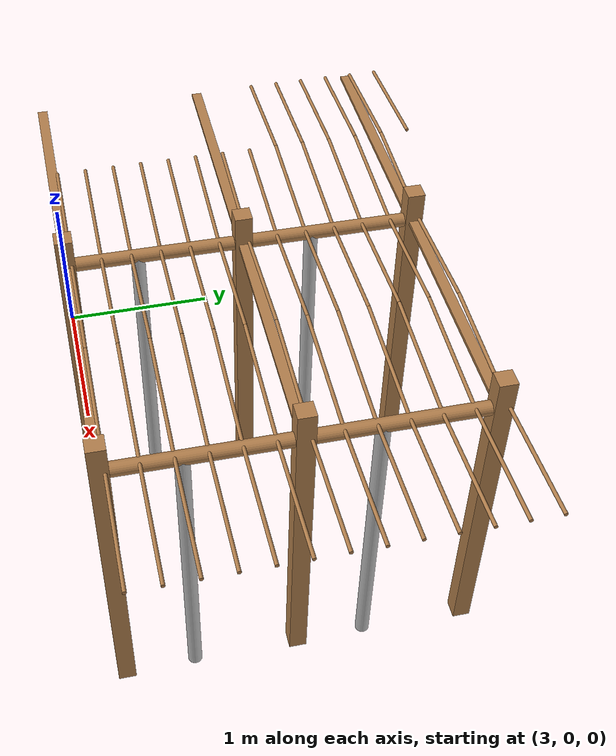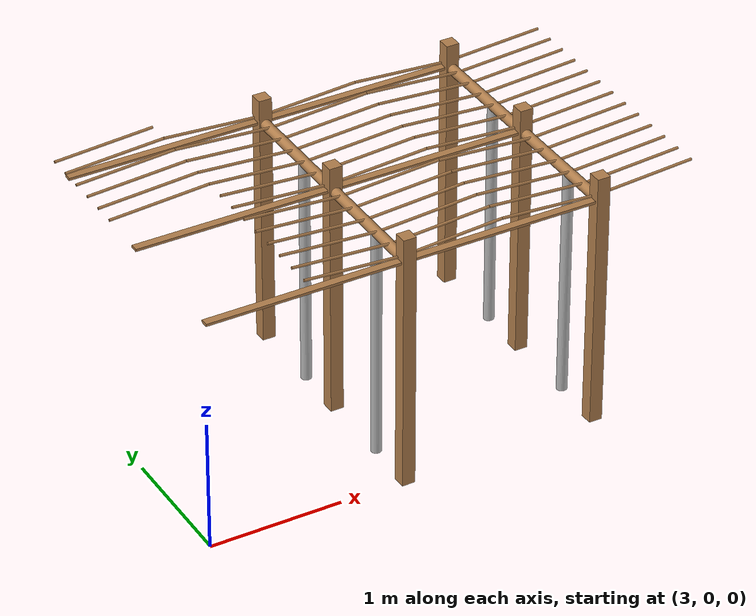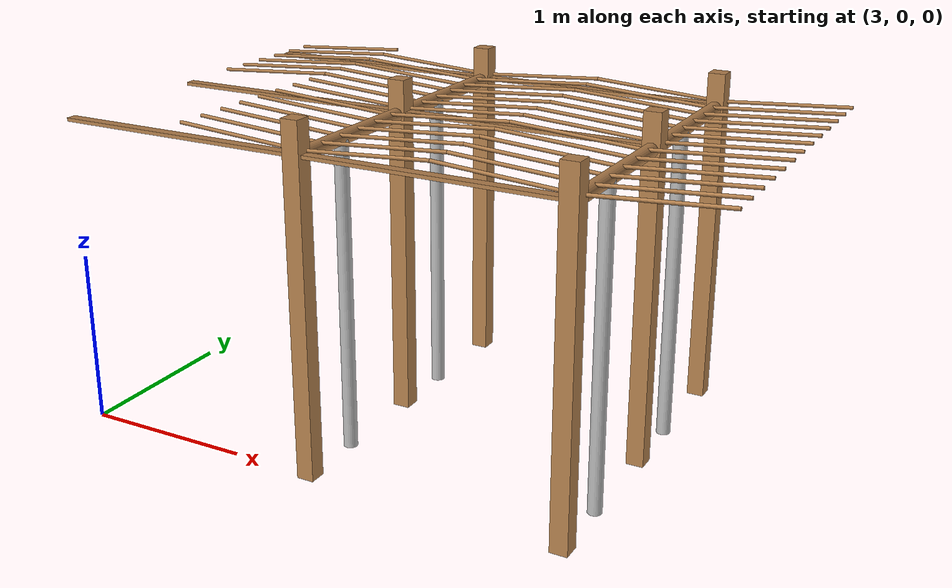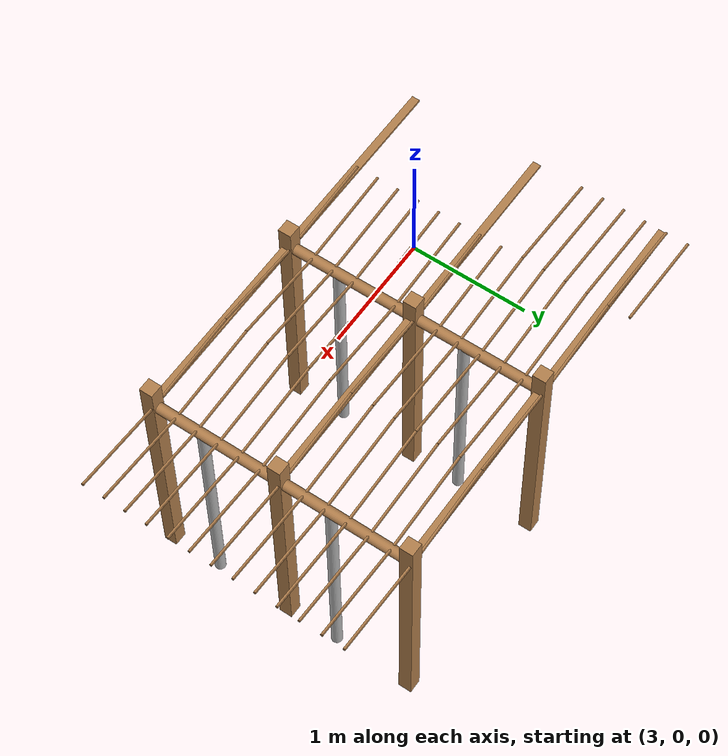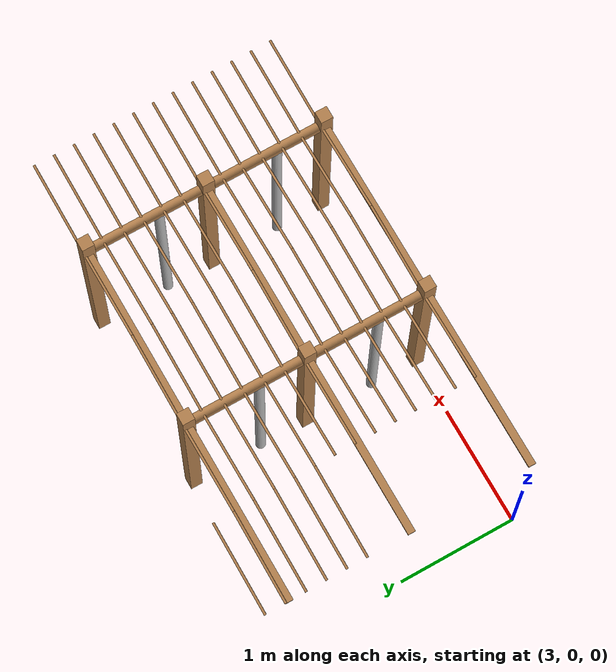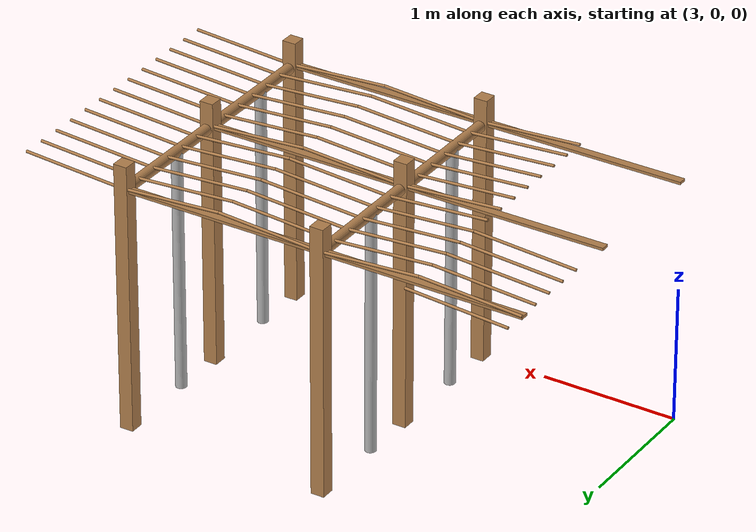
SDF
<sdf version="1.4">
 <model name="pergola">
  <include><name>post_33</name><pose>4.5 0.0 0 0 0 0</pose><uri>model://post</uri></include>
  <include><name>post_34</name><pose>4.5 1.0 0 0 0 0</pose><uri>model://post</uri></include>
  <include><name>post_35</name><pose>4.5 2.0 0 0 0 0</pose><uri>model://post</uri></include>
  <include><name>post_44</name><pose>6.0 0.0 0 0 0 0</pose><uri>model://post</uri></include>
  <include><name>post_45</name><pose>6.0 1.0 0 0 0 0</pose><uri>model://post</uri></include>
  <include><name>post_46</name><pose>6.0 2.0 0 0 0 0</pose><uri>model://post</uri></include>
  <link name="beam_22">
   <pose>3.75 0.0 1.81 0 0 0</pose>
   <collision name="collision"><geometry><box><size>1.5 0.06 0.02</size></box></geometry></collision>
   <visual name="visual">
    <geometry><box><size>1.5 0.06 0.02</size></box></geometry>
    <material><script><name>Gazebo/Wood</name></script></material>
   </visual>
   <inertial>
    <mass>5</mass>
    <inertia>
     <ixx>0.0016666666666666668</ixx>
     <ixy>0.0</ixy>
     <ixz>0.0</ixz>
     <iyy>0.9390000000000001</iyy>
     <iyz>0.0</iyz>
     <izz>0.9376666666666665</izz>
    </inertia>
   </inertial>
  </link>
  <link name="beam_23">
   <pose>3.75 1.0 1.81 0 0 0</pose>
   <collision name="collision"><geometry><box><size>1.5 0.06 0.02</size></box></geometry></collision>
   <visual name="visual">
    <geometry><box><size>1.5 0.06 0.02</size></box></geometry>
    <material><script><name>Gazebo/Wood</name></script></material>
   </visual>
   <inertial>
    <mass>5</mass>
    <inertia>
     <ixx>0.0016666666666666668</ixx>
     <ixy>0.0</ixy>
     <ixz>0.0</ixz>
     <iyy>0.9390000000000001</iyy>
     <iyz>0.0</iyz>
     <izz>0.9376666666666665</izz>
    </inertia>
   </inertial>
  </link>
  <link name="beam_24">
   <pose>3.75 2.0 1.81 0 0 0</pose>
   <collision name="collision"><geometry><box><size>1.5 0.06 0.02</size></box></geometry></collision>
   <visual name="visual">
    <geometry><box><size>1.5 0.06 0.02</size></box></geometry>
    <material><script><name>Gazebo/Wood</name></script></material>
   </visual>
   <inertial>
    <mass>5</mass>
    <inertia>
     <ixx>0.0016666666666666668</ixx>
     <ixy>0.0</ixy>
     <ixz>0.0</ixz>
     <iyy>0.9390000000000001</iyy>
     <iyz>0.0</iyz>
     <izz>0.9376666666666665</izz>
    </inertia>
   </inertial>
  </link>
  <link name="beam_33">
   <pose>5.25 0.0 1.81 0 0 0</pose>
   <collision name="collision"><geometry><box><size>1.5 0.06 0.02</size></box></geometry></collision>
   <visual name="visual">
    <geometry><box><size>1.5 0.06 0.02</size></box></geometry>
    <material><script><name>Gazebo/Wood</name></script></material>
   </visual>
   <inertial>
    <mass>5</mass>
    <inertia>
     <ixx>0.0016666666666666668</ixx>
     <ixy>0.0</ixy>
     <ixz>0.0</ixz>
     <iyy>0.9390000000000001</iyy>
     <iyz>0.0</iyz>
     <izz>0.9376666666666665</izz>
    </inertia>
   </inertial>
  </link>
  <link name="beam_34">
   <pose>5.25 1.0 1.81 0 0 0</pose>
   <collision name="collision"><geometry><box><size>1.5 0.06 0.02</size></box></geometry></collision>
   <visual name="visual">
    <geometry><box><size>1.5 0.06 0.02</size></box></geometry>
    <material><script><name>Gazebo/Wood</name></script></material>
   </visual>
   <inertial>
    <mass>5</mass>
    <inertia>
     <ixx>0.0016666666666666668</ixx>
     <ixy>0.0</ixy>
     <ixz>0.0</ixz>
     <iyy>0.9390000000000001</iyy>
     <iyz>0.0</iyz>
     <izz>0.9376666666666665</izz>
    </inertia>
   </inertial>
  </link>
  <link name="beam_35">
   <pose>5.25 2.0 1.81 0 0 0</pose>
   <collision name="collision"><geometry><box><size>1.5 0.06 0.02</size></box></geometry></collision>
   <visual name="visual">
    <geometry><box><size>1.5 0.06 0.02</size></box></geometry>
    <material><script><name>Gazebo/Wood</name></script></material>
   </visual>
   <inertial>
    <mass>5</mass>
    <inertia>
     <ixx>0.0016666666666666668</ixx>
     <ixy>0.0</ixy>
     <ixz>0.0</ixz>
     <iyy>0.9390000000000001</iyy>
     <iyz>0.0</iyz>
     <izz>0.9376666666666665</izz>
    </inertia>
   </inertial>
  </link>
  <include><name>tree_30</name><pose>4.5 0.4 0 0 0 0</pose><uri>model://tree_trunk</uri></include>
  <include><name>tree_31</name><pose>4.5 1.4 0 0 0 0</pose><uri>model://tree_trunk</uri></include>
  <include><name>tree_40</name><pose>6.0 0.4 0 0 0 0</pose><uri>model://tree_trunk</uri></include>
  <include><name>tree_41</name><pose>6.0 1.4 0 0 0 0</pose><uri>model://tree_trunk</uri></include>
  <link name="baseBranch_30">
   <pose>4.5 0.5 1.8 1.5707963267948966 0 0</pose>
   <collision name="collision">
    <geometry><cylinder><radius>0.04</radius><length>0.94</length></cylinder></geometry>
   </collision>
   <visual name="visual">
    <geometry><cylinder><radius>0.04</radius><length>0.94</length></cylinder></geometry>
    <material><script><name>Gazebo/WoodFloor</name></script></material>
   </visual>
   <inertial>
    <mass>10</mass>
    <inertia>
     <ixx>0.7403333333333334</ixx>
     <ixy>0.0</ixy>
     <ixz>0.0</ixz>
     <iyy>0.7403333333333334</iyy>
     <iyz>0.0</iyz>
     <izz>0.008</izz>
    </inertia>
   </inertial>
  </link>
  <link name="baseBranch_31">
   <pose>4.5 1.5 1.8 1.5707963267948966 0 0</pose>
   <collision name="collision">
    <geometry><cylinder><radius>0.04</radius><length>0.94</length></cylinder></geometry>
   </collision>
   <visual name="visual">
    <geometry><cylinder><radius>0.04</radius><length>0.94</length></cylinder></geometry>
    <material><script><name>Gazebo/WoodFloor</name></script></material>
   </visual>
   <inertial>
    <mass>10</mass>
    <inertia>
     <ixx>0.7403333333333334</ixx>
     <ixy>0.0</ixy>
     <ixz>0.0</ixz>
     <iyy>0.7403333333333334</iyy>
     <iyz>0.0</iyz>
     <izz>0.008</izz>
    </inertia>
   </inertial>
  </link>
  <link name="baseBranch_40">
   <pose>6.0 0.5 1.8 1.5707963267948966 0 0</pose>
   <collision name="collision">
    <geometry><cylinder><radius>0.04</radius><length>0.94</length></cylinder></geometry>
   </collision>
   <visual name="visual">
    <geometry><cylinder><radius>0.04</radius><length>0.94</length></cylinder></geometry>
    <material><script><name>Gazebo/WoodFloor</name></script></material>
   </visual>
   <inertial>
    <mass>10</mass>
    <inertia>
     <ixx>0.7403333333333334</ixx>
     <ixy>0.0</ixy>
     <ixz>0.0</ixz>
     <iyy>0.7403333333333334</iyy>
     <iyz>0.0</iyz>
     <izz>0.008</izz>
    </inertia>
   </inertial>
  </link>
  <link name="baseBranch_41">
   <pose>6.0 1.5 1.8 1.5707963267948966 0 0</pose>
   <collision name="collision">
    <geometry><cylinder><radius>0.04</radius><length>0.94</length></cylinder></geometry>
   </collision>
   <visual name="visual">
    <geometry><cylinder><radius>0.04</radius><length>0.94</length></cylinder></geometry>
    <material><script><name>Gazebo/WoodFloor</name></script></material>
   </visual>
   <inertial>
    <mass>10</mass>
    <inertia>
     <ixx>0.7403333333333334</ixx>
     <ixy>0.0</ixy>
     <ixz>0.0</ixz>
     <iyy>0.7403333333333334</iyy>
     <iyz>0.0</iyz>
     <izz>0.008</izz>
    </inertia>
   </inertial>
  </link>
  <link name="vine_241">
   <pose>4.125 0.03 1.85 0 -1.5042281630190728 0</pose>
   <collision name="collision">
    <geometry><cylinder><radius>0.01</radius><length>0.7516648189186453</length></cylinder></geometry>
   </collision>
   <visual name="visual">
    <geometry><cylinder><radius>0.01</radius><length>0.7516648189186453</length></cylinder></geometry>
    <material><script><name>Gazebo/WoodFloor</name></script></material>
   </visual>
   <inertial>
    <mass>5</mass>
    <inertia>
     <ixx>0.23554166666666657</ixx>
     <ixy>0.0</ixy>
     <ixz>0.0</ixz>
     <iyy>0.23554166666666657</iyy>
     <iyz>0.0</iyz>
     <izz>0.00025</izz>
    </inertia>
   </inertial>
  </link>
  <link name="vine_243">
   <pose>4.125 0.19666666666666666 1.85 0 -1.5042281630190728 0</pose>
   <collision name="collision">
    <geometry><cylinder><radius>0.01</radius><length>0.7516648189186453</length></cylinder></geometry>
   </collision>
   <visual name="visual">
    <geometry><cylinder><radius>0.01</radius><length>0.7516648189186453</length></cylinder></geometry>
    <material><script><name>Gazebo/WoodFloor</name></script></material>
   </visual>
   <inertial>
    <mass>5</mass>
    <inertia>
     <ixx>0.23554166666666657</ixx>
     <ixy>0.0</ixy>
     <ixz>0.0</ixz>
     <iyy>0.23554166666666657</iyy>
     <iyz>0.0</iyz>
     <izz>0.00025</izz>
    </inertia>
   </inertial>
  </link>
  <link name="vine_245">
   <pose>4.125 0.3633333333333333 1.85 0 -1.5042281630190728 0</pose>
   <collision name="collision">
    <geometry><cylinder><radius>0.01</radius><length>0.7516648189186453</length></cylinder></geometry>
   </collision>
   <visual name="visual">
    <geometry><cylinder><radius>0.01</radius><length>0.7516648189186453</length></cylinder></geometry>
    <material><script><name>Gazebo/WoodFloor</name></script></material>
   </visual>
   <inertial>
    <mass>5</mass>
    <inertia>
     <ixx>0.23554166666666657</ixx>
     <ixy>0.0</ixy>
     <ixz>0.0</ixz>
     <iyy>0.23554166666666657</iyy>
     <iyz>0.0</iyz>
     <izz>0.00025</izz>
    </inertia>
   </inertial>
  </link>
  <link name="vine_247">
   <pose>4.125 0.53 1.85 0 -1.5042281630190728 0</pose>
   <collision name="collision">
    <geometry><cylinder><radius>0.01</radius><length>0.7516648189186453</length></cylinder></geometry>
   </collision>
   <visual name="visual">
    <geometry><cylinder><radius>0.01</radius><length>0.7516648189186453</length></cylinder></geometry>
    <material><script><name>Gazebo/WoodFloor</name></script></material>
   </visual>
   <inertial>
    <mass>5</mass>
    <inertia>
     <ixx>0.23554166666666657</ixx>
     <ixy>0.0</ixy>
     <ixz>0.0</ixz>
     <iyy>0.23554166666666657</iyy>
     <iyz>0.0</iyz>
     <izz>0.00025</izz>
    </inertia>
   </inertial>
  </link>
  <link name="vine_249">
   <pose>4.125 0.6966666666666667 1.85 0 -1.5042281630190728 0</pose>
   <collision name="collision">
    <geometry><cylinder><radius>0.01</radius><length>0.7516648189186453</length></cylinder></geometry>
   </collision>
   <visual name="visual">
    <geometry><cylinder><radius>0.01</radius><length>0.7516648189186453</length></cylinder></geometry>
    <material><script><name>Gazebo/WoodFloor</name></script></material>
   </visual>
   <inertial>
    <mass>5</mass>
    <inertia>
     <ixx>0.23554166666666657</ixx>
     <ixy>0.0</ixy>
     <ixz>0.0</ixz>
     <iyy>0.23554166666666657</iyy>
     <iyz>0.0</iyz>
     <izz>0.00025</izz>
    </inertia>
   </inertial>
  </link>
  <link name="vine_251">
   <pose>4.125 0.8633333333333333 1.85 0 -1.5042281630190728 0</pose>
   <collision name="collision">
    <geometry><cylinder><radius>0.01</radius><length>0.7516648189186453</length></cylinder></geometry>
   </collision>
   <visual name="visual">
    <geometry><cylinder><radius>0.01</radius><length>0.7516648189186453</length></cylinder></geometry>
    <material><script><name>Gazebo/WoodFloor</name></script></material>
   </visual>
   <inertial>
    <mass>5</mass>
    <inertia>
     <ixx>0.23554166666666657</ixx>
     <ixy>0.0</ixy>
     <ixz>0.0</ixz>
     <iyy>0.23554166666666657</iyy>
     <iyz>0.0</iyz>
     <izz>0.00025</izz>
    </inertia>
   </inertial>
  </link>
  <link name="vine_253">
   <pose>4.125 1.03 1.85 0 -1.5042281630190728 0</pose>
   <collision name="collision">
    <geometry><cylinder><radius>0.01</radius><length>0.7516648189186453</length></cylinder></geometry>
   </collision>
   <visual name="visual">
    <geometry><cylinder><radius>0.01</radius><length>0.7516648189186453</length></cylinder></geometry>
    <material><script><name>Gazebo/WoodFloor</name></script></material>
   </visual>
   <inertial>
    <mass>5</mass>
    <inertia>
     <ixx>0.23554166666666657</ixx>
     <ixy>0.0</ixy>
     <ixz>0.0</ixz>
     <iyy>0.23554166666666657</iyy>
     <iyz>0.0</iyz>
     <izz>0.00025</izz>
    </inertia>
   </inertial>
  </link>
  <link name="vine_255">
   <pose>4.125 1.1966666666666665 1.85 0 -1.5042281630190728 0</pose>
   <collision name="collision">
    <geometry><cylinder><radius>0.01</radius><length>0.7516648189186453</length></cylinder></geometry>
   </collision>
   <visual name="visual">
    <geometry><cylinder><radius>0.01</radius><length>0.7516648189186453</length></cylinder></geometry>
    <material><script><name>Gazebo/WoodFloor</name></script></material>
   </visual>
   <inertial>
    <mass>5</mass>
    <inertia>
     <ixx>0.23554166666666657</ixx>
     <ixy>0.0</ixy>
     <ixz>0.0</ixz>
     <iyy>0.23554166666666657</iyy>
     <iyz>0.0</iyz>
     <izz>0.00025</izz>
    </inertia>
   </inertial>
  </link>
  <link name="vine_256">
   <pose>3.375 1.3633333333333333 1.85 0 1.5042281630190728 0</pose>
   <collision name="collision">
    <geometry><cylinder><radius>0.01</radius><length>0.7516648189186453</length></cylinder></geometry>
   </collision>
   <visual name="visual">
    <geometry><cylinder><radius>0.01</radius><length>0.7516648189186453</length></cylinder></geometry>
    <material><script><name>Gazebo/WoodFloor</name></script></material>
   </visual>
   <inertial>
    <mass>5</mass>
    <inertia>
     <ixx>0.23554166666666657</ixx>
     <ixy>0.0</ixy>
     <ixz>0.0</ixz>
     <iyy>0.23554166666666657</iyy>
     <iyz>0.0</iyz>
     <izz>0.00025</izz>
    </inertia>
   </inertial>
  </link>
  <link name="vine_257">
   <pose>4.125 1.3633333333333333 1.85 0 -1.5042281630190728 0</pose>
   <collision name="collision">
    <geometry><cylinder><radius>0.01</radius><length>0.7516648189186453</length></cylinder></geometry>
   </collision>
   <visual name="visual">
    <geometry><cylinder><radius>0.01</radius><length>0.7516648189186453</length></cylinder></geometry>
    <material><script><name>Gazebo/WoodFloor</name></script></material>
   </visual>
   <inertial>
    <mass>5</mass>
    <inertia>
     <ixx>0.23554166666666657</ixx>
     <ixy>0.0</ixy>
     <ixz>0.0</ixz>
     <iyy>0.23554166666666657</iyy>
     <iyz>0.0</iyz>
     <izz>0.00025</izz>
    </inertia>
   </inertial>
  </link>
  <link name="vine_258">
   <pose>3.375 1.53 1.85 0 1.5042281630190728 0</pose>
   <collision name="collision">
    <geometry><cylinder><radius>0.01</radius><length>0.7516648189186453</length></cylinder></geometry>
   </collision>
   <visual name="visual">
    <geometry><cylinder><radius>0.01</radius><length>0.7516648189186453</length></cylinder></geometry>
    <material><script><name>Gazebo/WoodFloor</name></script></material>
   </visual>
   <inertial>
    <mass>5</mass>
    <inertia>
     <ixx>0.23554166666666657</ixx>
     <ixy>0.0</ixy>
     <ixz>0.0</ixz>
     <iyy>0.23554166666666657</iyy>
     <iyz>0.0</iyz>
     <izz>0.00025</izz>
    </inertia>
   </inertial>
  </link>
  <link name="vine_259">
   <pose>4.125 1.53 1.85 0 -1.5042281630190728 0</pose>
   <collision name="collision">
    <geometry><cylinder><radius>0.01</radius><length>0.7516648189186453</length></cylinder></geometry>
   </collision>
   <visual name="visual">
    <geometry><cylinder><radius>0.01</radius><length>0.7516648189186453</length></cylinder></geometry>
    <material><script><name>Gazebo/WoodFloor</name></script></material>
   </visual>
   <inertial>
    <mass>5</mass>
    <inertia>
     <ixx>0.23554166666666657</ixx>
     <ixy>0.0</ixy>
     <ixz>0.0</ixz>
     <iyy>0.23554166666666657</iyy>
     <iyz>0.0</iyz>
     <izz>0.00025</izz>
    </inertia>
   </inertial>
  </link>
  <link name="vine_260">
   <pose>3.375 1.6966666666666665 1.85 0 1.5042281630190728 0</pose>
   <collision name="collision">
    <geometry><cylinder><radius>0.01</radius><length>0.7516648189186453</length></cylinder></geometry>
   </collision>
   <visual name="visual">
    <geometry><cylinder><radius>0.01</radius><length>0.7516648189186453</length></cylinder></geometry>
    <material><script><name>Gazebo/WoodFloor</name></script></material>
   </visual>
   <inertial>
    <mass>5</mass>
    <inertia>
     <ixx>0.23554166666666657</ixx>
     <ixy>0.0</ixy>
     <ixz>0.0</ixz>
     <iyy>0.23554166666666657</iyy>
     <iyz>0.0</iyz>
     <izz>0.00025</izz>
    </inertia>
   </inertial>
  </link>
  <link name="vine_261">
   <pose>4.125 1.6966666666666665 1.85 0 -1.5042281630190728 0</pose>
   <collision name="collision">
    <geometry><cylinder><radius>0.01</radius><length>0.7516648189186453</length></cylinder></geometry>
   </collision>
   <visual name="visual">
    <geometry><cylinder><radius>0.01</radius><length>0.7516648189186453</length></cylinder></geometry>
    <material><script><name>Gazebo/WoodFloor</name></script></material>
   </visual>
   <inertial>
    <mass>5</mass>
    <inertia>
     <ixx>0.23554166666666657</ixx>
     <ixy>0.0</ixy>
     <ixz>0.0</ixz>
     <iyy>0.23554166666666657</iyy>
     <iyz>0.0</iyz>
     <izz>0.00025</izz>
    </inertia>
   </inertial>
  </link>
  <link name="vine_262">
   <pose>3.375 1.8633333333333333 1.85 0 1.5042281630190728 0</pose>
   <collision name="collision">
    <geometry><cylinder><radius>0.01</radius><length>0.7516648189186453</length></cylinder></geometry>
   </collision>
   <visual name="visual">
    <geometry><cylinder><radius>0.01</radius><length>0.7516648189186453</length></cylinder></geometry>
    <material><script><name>Gazebo/WoodFloor</name></script></material>
   </visual>
   <inertial>
    <mass>5</mass>
    <inertia>
     <ixx>0.23554166666666657</ixx>
     <ixy>0.0</ixy>
     <ixz>0.0</ixz>
     <iyy>0.23554166666666657</iyy>
     <iyz>0.0</iyz>
     <izz>0.00025</izz>
    </inertia>
   </inertial>
  </link>
  <link name="vine_263">
   <pose>4.125 1.8633333333333333 1.85 0 -1.5042281630190728 0</pose>
   <collision name="collision">
    <geometry><cylinder><radius>0.01</radius><length>0.7516648189186453</length></cylinder></geometry>
   </collision>
   <visual name="visual">
    <geometry><cylinder><radius>0.01</radius><length>0.7516648189186453</length></cylinder></geometry>
    <material><script><name>Gazebo/WoodFloor</name></script></material>
   </visual>
   <inertial>
    <mass>5</mass>
    <inertia>
     <ixx>0.23554166666666657</ixx>
     <ixy>0.0</ixy>
     <ixz>0.0</ixz>
     <iyy>0.23554166666666657</iyy>
     <iyz>0.0</iyz>
     <izz>0.00025</izz>
    </inertia>
   </inertial>
  </link>
  <link name="vine_264">
   <pose>3.375 2.03 1.85 0 1.5042281630190728 0</pose>
   <collision name="collision">
    <geometry><cylinder><radius>0.01</radius><length>0.7516648189186453</length></cylinder></geometry>
   </collision>
   <visual name="visual">
    <geometry><cylinder><radius>0.01</radius><length>0.7516648189186453</length></cylinder></geometry>
    <material><script><name>Gazebo/WoodFloor</name></script></material>
   </visual>
   <inertial>
    <mass>5</mass>
    <inertia>
     <ixx>0.23554166666666657</ixx>
     <ixy>0.0</ixy>
     <ixz>0.0</ixz>
     <iyy>0.23554166666666657</iyy>
     <iyz>0.0</iyz>
     <izz>0.00025</izz>
    </inertia>
   </inertial>
  </link>
  <link name="vine_265">
   <pose>4.125 2.03 1.85 0 -1.5042281630190728 0</pose>
   <collision name="collision">
    <geometry><cylinder><radius>0.01</radius><length>0.7516648189186453</length></cylinder></geometry>
   </collision>
   <visual name="visual">
    <geometry><cylinder><radius>0.01</radius><length>0.7516648189186453</length></cylinder></geometry>
    <material><script><name>Gazebo/WoodFloor</name></script></material>
   </visual>
   <inertial>
    <mass>5</mass>
    <inertia>
     <ixx>0.23554166666666657</ixx>
     <ixy>0.0</ixy>
     <ixz>0.0</ixz>
     <iyy>0.23554166666666657</iyy>
     <iyz>0.0</iyz>
     <izz>0.00025</izz>
    </inertia>
   </inertial>
  </link>
  <link name="vine_266">
   <pose>3.375 2.1966666666666663 1.85 0 1.5042281630190728 0</pose>
   <collision name="collision">
    <geometry><cylinder><radius>0.01</radius><length>0.7516648189186453</length></cylinder></geometry>
   </collision>
   <visual name="visual">
    <geometry><cylinder><radius>0.01</radius><length>0.7516648189186453</length></cylinder></geometry>
    <material><script><name>Gazebo/WoodFloor</name></script></material>
   </visual>
   <inertial>
    <mass>5</mass>
    <inertia>
     <ixx>0.23554166666666657</ixx>
     <ixy>0.0</ixy>
     <ixz>0.0</ixz>
     <iyy>0.23554166666666657</iyy>
     <iyz>0.0</iyz>
     <izz>0.00025</izz>
    </inertia>
   </inertial>
  </link>
  <link name="vine_360">
   <pose>4.875 0.03 1.85 0 1.5042281630190728 0</pose>
   <collision name="collision">
    <geometry><cylinder><radius>0.01</radius><length>0.7516648189186453</length></cylinder></geometry>
   </collision>
   <visual name="visual">
    <geometry><cylinder><radius>0.01</radius><length>0.7516648189186453</length></cylinder></geometry>
    <material><script><name>Gazebo/WoodFloor</name></script></material>
   </visual>
   <inertial>
    <mass>5</mass>
    <inertia>
     <ixx>0.23554166666666657</ixx>
     <ixy>0.0</ixy>
     <ixz>0.0</ixz>
     <iyy>0.23554166666666657</iyy>
     <iyz>0.0</iyz>
     <izz>0.00025</izz>
    </inertia>
   </inertial>
  </link>
  <link name="vine_361">
   <pose>5.625 0.03 1.85 0 -1.5042281630190728 0</pose>
   <collision name="collision">
    <geometry><cylinder><radius>0.01</radius><length>0.7516648189186453</length></cylinder></geometry>
   </collision>
   <visual name="visual">
    <geometry><cylinder><radius>0.01</radius><length>0.7516648189186453</length></cylinder></geometry>
    <material><script><name>Gazebo/WoodFloor</name></script></material>
   </visual>
   <inertial>
    <mass>5</mass>
    <inertia>
     <ixx>0.23554166666666657</ixx>
     <ixy>0.0</ixy>
     <ixz>0.0</ixz>
     <iyy>0.23554166666666657</iyy>
     <iyz>0.0</iyz>
     <izz>0.00025</izz>
    </inertia>
   </inertial>
  </link>
  <link name="vine_362">
   <pose>4.875 0.19666666666666666 1.85 0 1.5042281630190728 0</pose>
   <collision name="collision">
    <geometry><cylinder><radius>0.01</radius><length>0.7516648189186453</length></cylinder></geometry>
   </collision>
   <visual name="visual">
    <geometry><cylinder><radius>0.01</radius><length>0.7516648189186453</length></cylinder></geometry>
    <material><script><name>Gazebo/WoodFloor</name></script></material>
   </visual>
   <inertial>
    <mass>5</mass>
    <inertia>
     <ixx>0.23554166666666657</ixx>
     <ixy>0.0</ixy>
     <ixz>0.0</ixz>
     <iyy>0.23554166666666657</iyy>
     <iyz>0.0</iyz>
     <izz>0.00025</izz>
    </inertia>
   </inertial>
  </link>
  <link name="vine_363">
   <pose>5.625 0.19666666666666666 1.85 0 -1.5042281630190728 0</pose>
   <collision name="collision">
    <geometry><cylinder><radius>0.01</radius><length>0.7516648189186453</length></cylinder></geometry>
   </collision>
   <visual name="visual">
    <geometry><cylinder><radius>0.01</radius><length>0.7516648189186453</length></cylinder></geometry>
    <material><script><name>Gazebo/WoodFloor</name></script></material>
   </visual>
   <inertial>
    <mass>5</mass>
    <inertia>
     <ixx>0.23554166666666657</ixx>
     <ixy>0.0</ixy>
     <ixz>0.0</ixz>
     <iyy>0.23554166666666657</iyy>
     <iyz>0.0</iyz>
     <izz>0.00025</izz>
    </inertia>
   </inertial>
  </link>
  <link name="vine_364">
   <pose>4.875 0.3633333333333333 1.85 0 1.5042281630190728 0</pose>
   <collision name="collision">
    <geometry><cylinder><radius>0.01</radius><length>0.7516648189186453</length></cylinder></geometry>
   </collision>
   <visual name="visual">
    <geometry><cylinder><radius>0.01</radius><length>0.7516648189186453</length></cylinder></geometry>
    <material><script><name>Gazebo/WoodFloor</name></script></material>
   </visual>
   <inertial>
    <mass>5</mass>
    <inertia>
     <ixx>0.23554166666666657</ixx>
     <ixy>0.0</ixy>
     <ixz>0.0</ixz>
     <iyy>0.23554166666666657</iyy>
     <iyz>0.0</iyz>
     <izz>0.00025</izz>
    </inertia>
   </inertial>
  </link>
  <link name="vine_365">
   <pose>5.625 0.3633333333333333 1.85 0 -1.5042281630190728 0</pose>
   <collision name="collision">
    <geometry><cylinder><radius>0.01</radius><length>0.7516648189186453</length></cylinder></geometry>
   </collision>
   <visual name="visual">
    <geometry><cylinder><radius>0.01</radius><length>0.7516648189186453</length></cylinder></geometry>
    <material><script><name>Gazebo/WoodFloor</name></script></material>
   </visual>
   <inertial>
    <mass>5</mass>
    <inertia>
     <ixx>0.23554166666666657</ixx>
     <ixy>0.0</ixy>
     <ixz>0.0</ixz>
     <iyy>0.23554166666666657</iyy>
     <iyz>0.0</iyz>
     <izz>0.00025</izz>
    </inertia>
   </inertial>
  </link>
  <link name="vine_366">
   <pose>4.875 0.53 1.85 0 1.5042281630190728 0</pose>
   <collision name="collision">
    <geometry><cylinder><radius>0.01</radius><length>0.7516648189186453</length></cylinder></geometry>
   </collision>
   <visual name="visual">
    <geometry><cylinder><radius>0.01</radius><length>0.7516648189186453</length></cylinder></geometry>
    <material><script><name>Gazebo/WoodFloor</name></script></material>
   </visual>
   <inertial>
    <mass>5</mass>
    <inertia>
     <ixx>0.23554166666666657</ixx>
     <ixy>0.0</ixy>
     <ixz>0.0</ixz>
     <iyy>0.23554166666666657</iyy>
     <iyz>0.0</iyz>
     <izz>0.00025</izz>
    </inertia>
   </inertial>
  </link>
  <link name="vine_367">
   <pose>5.625 0.53 1.85 0 -1.5042281630190728 0</pose>
   <collision name="collision">
    <geometry><cylinder><radius>0.01</radius><length>0.7516648189186453</length></cylinder></geometry>
   </collision>
   <visual name="visual">
    <geometry><cylinder><radius>0.01</radius><length>0.7516648189186453</length></cylinder></geometry>
    <material><script><name>Gazebo/WoodFloor</name></script></material>
   </visual>
   <inertial>
    <mass>5</mass>
    <inertia>
     <ixx>0.23554166666666657</ixx>
     <ixy>0.0</ixy>
     <ixz>0.0</ixz>
     <iyy>0.23554166666666657</iyy>
     <iyz>0.0</iyz>
     <izz>0.00025</izz>
    </inertia>
   </inertial>
  </link>
  <link name="vine_368">
   <pose>4.875 0.6966666666666667 1.85 0 1.5042281630190728 0</pose>
   <collision name="collision">
    <geometry><cylinder><radius>0.01</radius><length>0.7516648189186453</length></cylinder></geometry>
   </collision>
   <visual name="visual">
    <geometry><cylinder><radius>0.01</radius><length>0.7516648189186453</length></cylinder></geometry>
    <material><script><name>Gazebo/WoodFloor</name></script></material>
   </visual>
   <inertial>
    <mass>5</mass>
    <inertia>
     <ixx>0.23554166666666657</ixx>
     <ixy>0.0</ixy>
     <ixz>0.0</ixz>
     <iyy>0.23554166666666657</iyy>
     <iyz>0.0</iyz>
     <izz>0.00025</izz>
    </inertia>
   </inertial>
  </link>
  <link name="vine_369">
   <pose>5.625 0.6966666666666667 1.85 0 -1.5042281630190728 0</pose>
   <collision name="collision">
    <geometry><cylinder><radius>0.01</radius><length>0.7516648189186453</length></cylinder></geometry>
   </collision>
   <visual name="visual">
    <geometry><cylinder><radius>0.01</radius><length>0.7516648189186453</length></cylinder></geometry>
    <material><script><name>Gazebo/WoodFloor</name></script></material>
   </visual>
   <inertial>
    <mass>5</mass>
    <inertia>
     <ixx>0.23554166666666657</ixx>
     <ixy>0.0</ixy>
     <ixz>0.0</ixz>
     <iyy>0.23554166666666657</iyy>
     <iyz>0.0</iyz>
     <izz>0.00025</izz>
    </inertia>
   </inertial>
  </link>
  <link name="vine_370">
   <pose>4.875 0.8633333333333333 1.85 0 1.5042281630190728 0</pose>
   <collision name="collision">
    <geometry><cylinder><radius>0.01</radius><length>0.7516648189186453</length></cylinder></geometry>
   </collision>
   <visual name="visual">
    <geometry><cylinder><radius>0.01</radius><length>0.7516648189186453</length></cylinder></geometry>
    <material><script><name>Gazebo/WoodFloor</name></script></material>
   </visual>
   <inertial>
    <mass>5</mass>
    <inertia>
     <ixx>0.23554166666666657</ixx>
     <ixy>0.0</ixy>
     <ixz>0.0</ixz>
     <iyy>0.23554166666666657</iyy>
     <iyz>0.0</iyz>
     <izz>0.00025</izz>
    </inertia>
   </inertial>
  </link>
  <link name="vine_371">
   <pose>5.625 0.8633333333333333 1.85 0 -1.5042281630190728 0</pose>
   <collision name="collision">
    <geometry><cylinder><radius>0.01</radius><length>0.7516648189186453</length></cylinder></geometry>
   </collision>
   <visual name="visual">
    <geometry><cylinder><radius>0.01</radius><length>0.7516648189186453</length></cylinder></geometry>
    <material><script><name>Gazebo/WoodFloor</name></script></material>
   </visual>
   <inertial>
    <mass>5</mass>
    <inertia>
     <ixx>0.23554166666666657</ixx>
     <ixy>0.0</ixy>
     <ixz>0.0</ixz>
     <iyy>0.23554166666666657</iyy>
     <iyz>0.0</iyz>
     <izz>0.00025</izz>
    </inertia>
   </inertial>
  </link>
  <link name="vine_372">
   <pose>4.875 1.03 1.85 0 1.5042281630190728 0</pose>
   <collision name="collision">
    <geometry><cylinder><radius>0.01</radius><length>0.7516648189186453</length></cylinder></geometry>
   </collision>
   <visual name="visual">
    <geometry><cylinder><radius>0.01</radius><length>0.7516648189186453</length></cylinder></geometry>
    <material><script><name>Gazebo/WoodFloor</name></script></material>
   </visual>
   <inertial>
    <mass>5</mass>
    <inertia>
     <ixx>0.23554166666666657</ixx>
     <ixy>0.0</ixy>
     <ixz>0.0</ixz>
     <iyy>0.23554166666666657</iyy>
     <iyz>0.0</iyz>
     <izz>0.00025</izz>
    </inertia>
   </inertial>
  </link>
  <link name="vine_373">
   <pose>5.625 1.03 1.85 0 -1.5042281630190728 0</pose>
   <collision name="collision">
    <geometry><cylinder><radius>0.01</radius><length>0.7516648189186453</length></cylinder></geometry>
   </collision>
   <visual name="visual">
    <geometry><cylinder><radius>0.01</radius><length>0.7516648189186453</length></cylinder></geometry>
    <material><script><name>Gazebo/WoodFloor</name></script></material>
   </visual>
   <inertial>
    <mass>5</mass>
    <inertia>
     <ixx>0.23554166666666657</ixx>
     <ixy>0.0</ixy>
     <ixz>0.0</ixz>
     <iyy>0.23554166666666657</iyy>
     <iyz>0.0</iyz>
     <izz>0.00025</izz>
    </inertia>
   </inertial>
  </link>
  <link name="vine_374">
   <pose>4.875 1.1966666666666665 1.85 0 1.5042281630190728 0</pose>
   <collision name="collision">
    <geometry><cylinder><radius>0.01</radius><length>0.7516648189186453</length></cylinder></geometry>
   </collision>
   <visual name="visual">
    <geometry><cylinder><radius>0.01</radius><length>0.7516648189186453</length></cylinder></geometry>
    <material><script><name>Gazebo/WoodFloor</name></script></material>
   </visual>
   <inertial>
    <mass>5</mass>
    <inertia>
     <ixx>0.23554166666666657</ixx>
     <ixy>0.0</ixy>
     <ixz>0.0</ixz>
     <iyy>0.23554166666666657</iyy>
     <iyz>0.0</iyz>
     <izz>0.00025</izz>
    </inertia>
   </inertial>
  </link>
  <link name="vine_375">
   <pose>5.625 1.1966666666666665 1.85 0 -1.5042281630190728 0</pose>
   <collision name="collision">
    <geometry><cylinder><radius>0.01</radius><length>0.7516648189186453</length></cylinder></geometry>
   </collision>
   <visual name="visual">
    <geometry><cylinder><radius>0.01</radius><length>0.7516648189186453</length></cylinder></geometry>
    <material><script><name>Gazebo/WoodFloor</name></script></material>
   </visual>
   <inertial>
    <mass>5</mass>
    <inertia>
     <ixx>0.23554166666666657</ixx>
     <ixy>0.0</ixy>
     <ixz>0.0</ixz>
     <iyy>0.23554166666666657</iyy>
     <iyz>0.0</iyz>
     <izz>0.00025</izz>
    </inertia>
   </inertial>
  </link>
  <link name="vine_376">
   <pose>4.875 1.3633333333333333 1.85 0 1.5042281630190728 0</pose>
   <collision name="collision">
    <geometry><cylinder><radius>0.01</radius><length>0.7516648189186453</length></cylinder></geometry>
   </collision>
   <visual name="visual">
    <geometry><cylinder><radius>0.01</radius><length>0.7516648189186453</length></cylinder></geometry>
    <material><script><name>Gazebo/WoodFloor</name></script></material>
   </visual>
   <inertial>
    <mass>5</mass>
    <inertia>
     <ixx>0.23554166666666657</ixx>
     <ixy>0.0</ixy>
     <ixz>0.0</ixz>
     <iyy>0.23554166666666657</iyy>
     <iyz>0.0</iyz>
     <izz>0.00025</izz>
    </inertia>
   </inertial>
  </link>
  <link name="vine_377">
   <pose>5.625 1.3633333333333333 1.85 0 -1.5042281630190728 0</pose>
   <collision name="collision">
    <geometry><cylinder><radius>0.01</radius><length>0.7516648189186453</length></cylinder></geometry>
   </collision>
   <visual name="visual">
    <geometry><cylinder><radius>0.01</radius><length>0.7516648189186453</length></cylinder></geometry>
    <material><script><name>Gazebo/WoodFloor</name></script></material>
   </visual>
   <inertial>
    <mass>5</mass>
    <inertia>
     <ixx>0.23554166666666657</ixx>
     <ixy>0.0</ixy>
     <ixz>0.0</ixz>
     <iyy>0.23554166666666657</iyy>
     <iyz>0.0</iyz>
     <izz>0.00025</izz>
    </inertia>
   </inertial>
  </link>
  <link name="vine_378">
   <pose>4.875 1.53 1.85 0 1.5042281630190728 0</pose>
   <collision name="collision">
    <geometry><cylinder><radius>0.01</radius><length>0.7516648189186453</length></cylinder></geometry>
   </collision>
   <visual name="visual">
    <geometry><cylinder><radius>0.01</radius><length>0.7516648189186453</length></cylinder></geometry>
    <material><script><name>Gazebo/WoodFloor</name></script></material>
   </visual>
   <inertial>
    <mass>5</mass>
    <inertia>
     <ixx>0.23554166666666657</ixx>
     <ixy>0.0</ixy>
     <ixz>0.0</ixz>
     <iyy>0.23554166666666657</iyy>
     <iyz>0.0</iyz>
     <izz>0.00025</izz>
    </inertia>
   </inertial>
  </link>
  <link name="vine_379">
   <pose>5.625 1.53 1.85 0 -1.5042281630190728 0</pose>
   <collision name="collision">
    <geometry><cylinder><radius>0.01</radius><length>0.7516648189186453</length></cylinder></geometry>
   </collision>
   <visual name="visual">
    <geometry><cylinder><radius>0.01</radius><length>0.7516648189186453</length></cylinder></geometry>
    <material><script><name>Gazebo/WoodFloor</name></script></material>
   </visual>
   <inertial>
    <mass>5</mass>
    <inertia>
     <ixx>0.23554166666666657</ixx>
     <ixy>0.0</ixy>
     <ixz>0.0</ixz>
     <iyy>0.23554166666666657</iyy>
     <iyz>0.0</iyz>
     <izz>0.00025</izz>
    </inertia>
   </inertial>
  </link>
  <link name="vine_380">
   <pose>4.875 1.6966666666666665 1.85 0 1.5042281630190728 0</pose>
   <collision name="collision">
    <geometry><cylinder><radius>0.01</radius><length>0.7516648189186453</length></cylinder></geometry>
   </collision>
   <visual name="visual">
    <geometry><cylinder><radius>0.01</radius><length>0.7516648189186453</length></cylinder></geometry>
    <material><script><name>Gazebo/WoodFloor</name></script></material>
   </visual>
   <inertial>
    <mass>5</mass>
    <inertia>
     <ixx>0.23554166666666657</ixx>
     <ixy>0.0</ixy>
     <ixz>0.0</ixz>
     <iyy>0.23554166666666657</iyy>
     <iyz>0.0</iyz>
     <izz>0.00025</izz>
    </inertia>
   </inertial>
  </link>
  <link name="vine_381">
   <pose>5.625 1.6966666666666665 1.85 0 -1.5042281630190728 0</pose>
   <collision name="collision">
    <geometry><cylinder><radius>0.01</radius><length>0.7516648189186453</length></cylinder></geometry>
   </collision>
   <visual name="visual">
    <geometry><cylinder><radius>0.01</radius><length>0.7516648189186453</length></cylinder></geometry>
    <material><script><name>Gazebo/WoodFloor</name></script></material>
   </visual>
   <inertial>
    <mass>5</mass>
    <inertia>
     <ixx>0.23554166666666657</ixx>
     <ixy>0.0</ixy>
     <ixz>0.0</ixz>
     <iyy>0.23554166666666657</iyy>
     <iyz>0.0</iyz>
     <izz>0.00025</izz>
    </inertia>
   </inertial>
  </link>
  <link name="vine_382">
   <pose>4.875 1.8633333333333333 1.85 0 1.5042281630190728 0</pose>
   <collision name="collision">
    <geometry><cylinder><radius>0.01</radius><length>0.7516648189186453</length></cylinder></geometry>
   </collision>
   <visual name="visual">
    <geometry><cylinder><radius>0.01</radius><length>0.7516648189186453</length></cylinder></geometry>
    <material><script><name>Gazebo/WoodFloor</name></script></material>
   </visual>
   <inertial>
    <mass>5</mass>
    <inertia>
     <ixx>0.23554166666666657</ixx>
     <ixy>0.0</ixy>
     <ixz>0.0</ixz>
     <iyy>0.23554166666666657</iyy>
     <iyz>0.0</iyz>
     <izz>0.00025</izz>
    </inertia>
   </inertial>
  </link>
  <link name="vine_383">
   <pose>5.625 1.8633333333333333 1.85 0 -1.5042281630190728 0</pose>
   <collision name="collision">
    <geometry><cylinder><radius>0.01</radius><length>0.7516648189186453</length></cylinder></geometry>
   </collision>
   <visual name="visual">
    <geometry><cylinder><radius>0.01</radius><length>0.7516648189186453</length></cylinder></geometry>
    <material><script><name>Gazebo/WoodFloor</name></script></material>
   </visual>
   <inertial>
    <mass>5</mass>
    <inertia>
     <ixx>0.23554166666666657</ixx>
     <ixy>0.0</ixy>
     <ixz>0.0</ixz>
     <iyy>0.23554166666666657</iyy>
     <iyz>0.0</iyz>
     <izz>0.00025</izz>
    </inertia>
   </inertial>
  </link>
  <link name="vine_384">
   <pose>4.875 2.03 1.85 0 1.5042281630190728 0</pose>
   <collision name="collision">
    <geometry><cylinder><radius>0.01</radius><length>0.7516648189186453</length></cylinder></geometry>
   </collision>
   <visual name="visual">
    <geometry><cylinder><radius>0.01</radius><length>0.7516648189186453</length></cylinder></geometry>
    <material><script><name>Gazebo/WoodFloor</name></script></material>
   </visual>
   <inertial>
    <mass>5</mass>
    <inertia>
     <ixx>0.23554166666666657</ixx>
     <ixy>0.0</ixy>
     <ixz>0.0</ixz>
     <iyy>0.23554166666666657</iyy>
     <iyz>0.0</iyz>
     <izz>0.00025</izz>
    </inertia>
   </inertial>
  </link>
  <link name="vine_385">
   <pose>5.625 2.03 1.85 0 -1.5042281630190728 0</pose>
   <collision name="collision">
    <geometry><cylinder><radius>0.01</radius><length>0.7516648189186453</length></cylinder></geometry>
   </collision>
   <visual name="visual">
    <geometry><cylinder><radius>0.01</radius><length>0.7516648189186453</length></cylinder></geometry>
    <material><script><name>Gazebo/WoodFloor</name></script></material>
   </visual>
   <inertial>
    <mass>5</mass>
    <inertia>
     <ixx>0.23554166666666657</ixx>
     <ixy>0.0</ixy>
     <ixz>0.0</ixz>
     <iyy>0.23554166666666657</iyy>
     <iyz>0.0</iyz>
     <izz>0.00025</izz>
    </inertia>
   </inertial>
  </link>
  <link name="vine_480">
   <pose>6.375 0.03 1.85 0 1.5042281630190728 0</pose>
   <collision name="collision">
    <geometry><cylinder><radius>0.01</radius><length>0.7516648189186453</length></cylinder></geometry>
   </collision>
   <visual name="visual">
    <geometry><cylinder><radius>0.01</radius><length>0.7516648189186453</length></cylinder></geometry>
    <material><script><name>Gazebo/WoodFloor</name></script></material>
   </visual>
   <inertial>
    <mass>5</mass>
    <inertia>
     <ixx>0.23554166666666657</ixx>
     <ixy>0.0</ixy>
     <ixz>0.0</ixz>
     <iyy>0.23554166666666657</iyy>
     <iyz>0.0</iyz>
     <izz>0.00025</izz>
    </inertia>
   </inertial>
  </link>
  <link name="vine_482">
   <pose>6.375 0.19666666666666666 1.85 0 1.5042281630190728 0</pose>
   <collision name="collision">
    <geometry><cylinder><radius>0.01</radius><length>0.7516648189186453</length></cylinder></geometry>
   </collision>
   <visual name="visual">
    <geometry><cylinder><radius>0.01</radius><length>0.7516648189186453</length></cylinder></geometry>
    <material><script><name>Gazebo/WoodFloor</name></script></material>
   </visual>
   <inertial>
    <mass>5</mass>
    <inertia>
     <ixx>0.23554166666666657</ixx>
     <ixy>0.0</ixy>
     <ixz>0.0</ixz>
     <iyy>0.23554166666666657</iyy>
     <iyz>0.0</iyz>
     <izz>0.00025</izz>
    </inertia>
   </inertial>
  </link>
  <link name="vine_484">
   <pose>6.375 0.3633333333333333 1.85 0 1.5042281630190728 0</pose>
   <collision name="collision">
    <geometry><cylinder><radius>0.01</radius><length>0.7516648189186453</length></cylinder></geometry>
   </collision>
   <visual name="visual">
    <geometry><cylinder><radius>0.01</radius><length>0.7516648189186453</length></cylinder></geometry>
    <material><script><name>Gazebo/WoodFloor</name></script></material>
   </visual>
   <inertial>
    <mass>5</mass>
    <inertia>
     <ixx>0.23554166666666657</ixx>
     <ixy>0.0</ixy>
     <ixz>0.0</ixz>
     <iyy>0.23554166666666657</iyy>
     <iyz>0.0</iyz>
     <izz>0.00025</izz>
    </inertia>
   </inertial>
  </link>
  <link name="vine_486">
   <pose>6.375 0.53 1.85 0 1.5042281630190728 0</pose>
   <collision name="collision">
    <geometry><cylinder><radius>0.01</radius><length>0.7516648189186453</length></cylinder></geometry>
   </collision>
   <visual name="visual">
    <geometry><cylinder><radius>0.01</radius><length>0.7516648189186453</length></cylinder></geometry>
    <material><script><name>Gazebo/WoodFloor</name></script></material>
   </visual>
   <inertial>
    <mass>5</mass>
    <inertia>
     <ixx>0.23554166666666657</ixx>
     <ixy>0.0</ixy>
     <ixz>0.0</ixz>
     <iyy>0.23554166666666657</iyy>
     <iyz>0.0</iyz>
     <izz>0.00025</izz>
    </inertia>
   </inertial>
  </link>
  <link name="vine_488">
   <pose>6.375 0.6966666666666667 1.85 0 1.5042281630190728 0</pose>
   <collision name="collision">
    <geometry><cylinder><radius>0.01</radius><length>0.7516648189186453</length></cylinder></geometry>
   </collision>
   <visual name="visual">
    <geometry><cylinder><radius>0.01</radius><length>0.7516648189186453</length></cylinder></geometry>
    <material><script><name>Gazebo/WoodFloor</name></script></material>
   </visual>
   <inertial>
    <mass>5</mass>
    <inertia>
     <ixx>0.23554166666666657</ixx>
     <ixy>0.0</ixy>
     <ixz>0.0</ixz>
     <iyy>0.23554166666666657</iyy>
     <iyz>0.0</iyz>
     <izz>0.00025</izz>
    </inertia>
   </inertial>
  </link>
  <link name="vine_490">
   <pose>6.375 0.8633333333333333 1.85 0 1.5042281630190728 0</pose>
   <collision name="collision">
    <geometry><cylinder><radius>0.01</radius><length>0.7516648189186453</length></cylinder></geometry>
   </collision>
   <visual name="visual">
    <geometry><cylinder><radius>0.01</radius><length>0.7516648189186453</length></cylinder></geometry>
    <material><script><name>Gazebo/WoodFloor</name></script></material>
   </visual>
   <inertial>
    <mass>5</mass>
    <inertia>
     <ixx>0.23554166666666657</ixx>
     <ixy>0.0</ixy>
     <ixz>0.0</ixz>
     <iyy>0.23554166666666657</iyy>
     <iyz>0.0</iyz>
     <izz>0.00025</izz>
    </inertia>
   </inertial>
  </link>
  <link name="vine_492">
   <pose>6.375 1.03 1.85 0 1.5042281630190728 0</pose>
   <collision name="collision">
    <geometry><cylinder><radius>0.01</radius><length>0.7516648189186453</length></cylinder></geometry>
   </collision>
   <visual name="visual">
    <geometry><cylinder><radius>0.01</radius><length>0.7516648189186453</length></cylinder></geometry>
    <material><script><name>Gazebo/WoodFloor</name></script></material>
   </visual>
   <inertial>
    <mass>5</mass>
    <inertia>
     <ixx>0.23554166666666657</ixx>
     <ixy>0.0</ixy>
     <ixz>0.0</ixz>
     <iyy>0.23554166666666657</iyy>
     <iyz>0.0</iyz>
     <izz>0.00025</izz>
    </inertia>
   </inertial>
  </link>
  <link name="vine_494">
   <pose>6.375 1.1966666666666665 1.85 0 1.5042281630190728 0</pose>
   <collision name="collision">
    <geometry><cylinder><radius>0.01</radius><length>0.7516648189186453</length></cylinder></geometry>
   </collision>
   <visual name="visual">
    <geometry><cylinder><radius>0.01</radius><length>0.7516648189186453</length></cylinder></geometry>
    <material><script><name>Gazebo/WoodFloor</name></script></material>
   </visual>
   <inertial>
    <mass>5</mass>
    <inertia>
     <ixx>0.23554166666666657</ixx>
     <ixy>0.0</ixy>
     <ixz>0.0</ixz>
     <iyy>0.23554166666666657</iyy>
     <iyz>0.0</iyz>
     <izz>0.00025</izz>
    </inertia>
   </inertial>
  </link>
  <link name="vine_496">
   <pose>6.375 1.3633333333333333 1.85 0 1.5042281630190728 0</pose>
   <collision name="collision">
    <geometry><cylinder><radius>0.01</radius><length>0.7516648189186453</length></cylinder></geometry>
   </collision>
   <visual name="visual">
    <geometry><cylinder><radius>0.01</radius><length>0.7516648189186453</length></cylinder></geometry>
    <material><script><name>Gazebo/WoodFloor</name></script></material>
   </visual>
   <inertial>
    <mass>5</mass>
    <inertia>
     <ixx>0.23554166666666657</ixx>
     <ixy>0.0</ixy>
     <ixz>0.0</ixz>
     <iyy>0.23554166666666657</iyy>
     <iyz>0.0</iyz>
     <izz>0.00025</izz>
    </inertia>
   </inertial>
  </link>
  <link name="vine_498">
   <pose>6.375 1.53 1.85 0 1.5042281630190728 0</pose>
   <collision name="collision">
    <geometry><cylinder><radius>0.01</radius><length>0.7516648189186453</length></cylinder></geometry>
   </collision>
   <visual name="visual">
    <geometry><cylinder><radius>0.01</radius><length>0.7516648189186453</length></cylinder></geometry>
    <material><script><name>Gazebo/WoodFloor</name></script></material>
   </visual>
   <inertial>
    <mass>5</mass>
    <inertia>
     <ixx>0.23554166666666657</ixx>
     <ixy>0.0</ixy>
     <ixz>0.0</ixz>
     <iyy>0.23554166666666657</iyy>
     <iyz>0.0</iyz>
     <izz>0.00025</izz>
    </inertia>
   </inertial>
  </link>
  <link name="vine_500">
   <pose>6.375 1.6966666666666665 1.85 0 1.5042281630190728 0</pose>
   <collision name="collision">
    <geometry><cylinder><radius>0.01</radius><length>0.7516648189186453</length></cylinder></geometry>
   </collision>
   <visual name="visual">
    <geometry><cylinder><radius>0.01</radius><length>0.7516648189186453</length></cylinder></geometry>
    <material><script><name>Gazebo/WoodFloor</name></script></material>
   </visual>
   <inertial>
    <mass>5</mass>
    <inertia>
     <ixx>0.23554166666666657</ixx>
     <ixy>0.0</ixy>
     <ixz>0.0</ixz>
     <iyy>0.23554166666666657</iyy>
     <iyz>0.0</iyz>
     <izz>0.00025</izz>
    </inertia>
   </inertial>
  </link>
  <link name="vine_502">
   <pose>6.375 1.8633333333333333 1.85 0 1.5042281630190728 0</pose>
   <collision name="collision">
    <geometry><cylinder><radius>0.01</radius><length>0.7516648189186453</length></cylinder></geometry>
   </collision>
   <visual name="visual">
    <geometry><cylinder><radius>0.01</radius><length>0.7516648189186453</length></cylinder></geometry>
    <material><script><name>Gazebo/WoodFloor</name></script></material>
   </visual>
   <inertial>
    <mass>5</mass>
    <inertia>
     <ixx>0.23554166666666657</ixx>
     <ixy>0.0</ixy>
     <ixz>0.0</ixz>
     <iyy>0.23554166666666657</iyy>
     <iyz>0.0</iyz>
     <izz>0.00025</izz>
    </inertia>
   </inertial>
  </link>
  <link name="vine_504">
   <pose>6.375 2.03 1.85 0 1.5042281630190728 0</pose>
   <collision name="collision">
    <geometry><cylinder><radius>0.01</radius><length>0.7516648189186453</length></cylinder></geometry>
   </collision>
   <visual name="visual">
    <geometry><cylinder><radius>0.01</radius><length>0.7516648189186453</length></cylinder></geometry>
    <material><script><name>Gazebo/WoodFloor</name></script></material>
   </visual>
   <inertial>
    <mass>5</mass>
    <inertia>
     <ixx>0.23554166666666657</ixx>
     <ixy>0.0</ixy>
     <ixz>0.0</ixz>
     <iyy>0.23554166666666657</iyy>
     <iyz>0.0</iyz>
     <izz>0.00025</izz>
    </inertia>
   </inertial>
  </link>
 </model>
</sdf>
